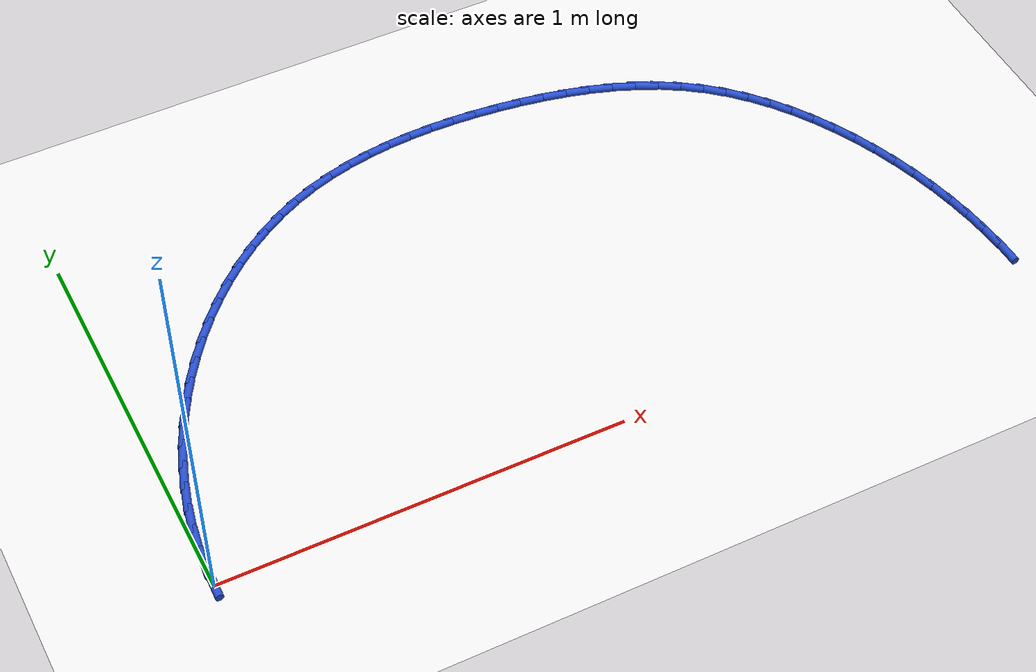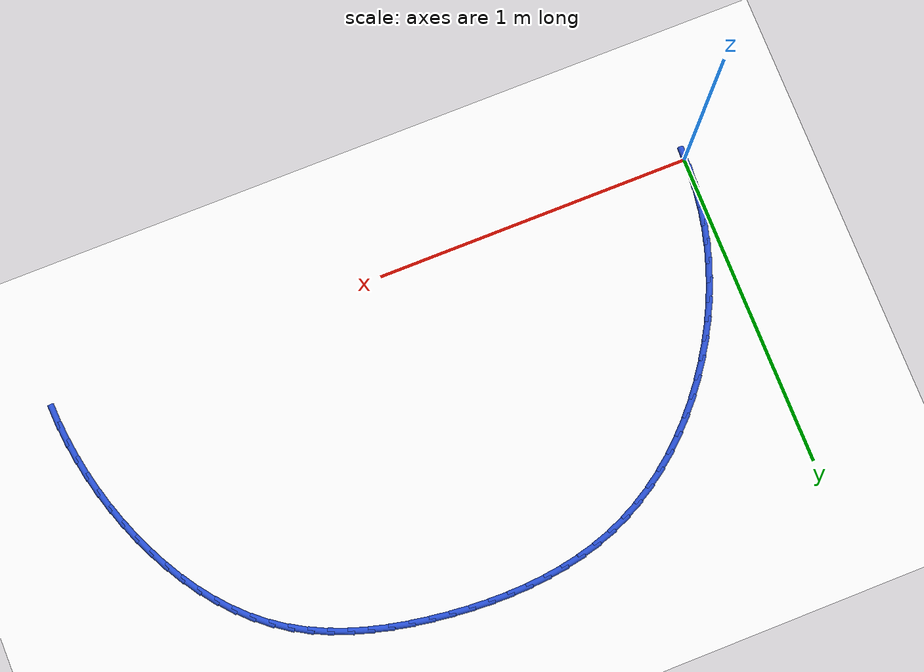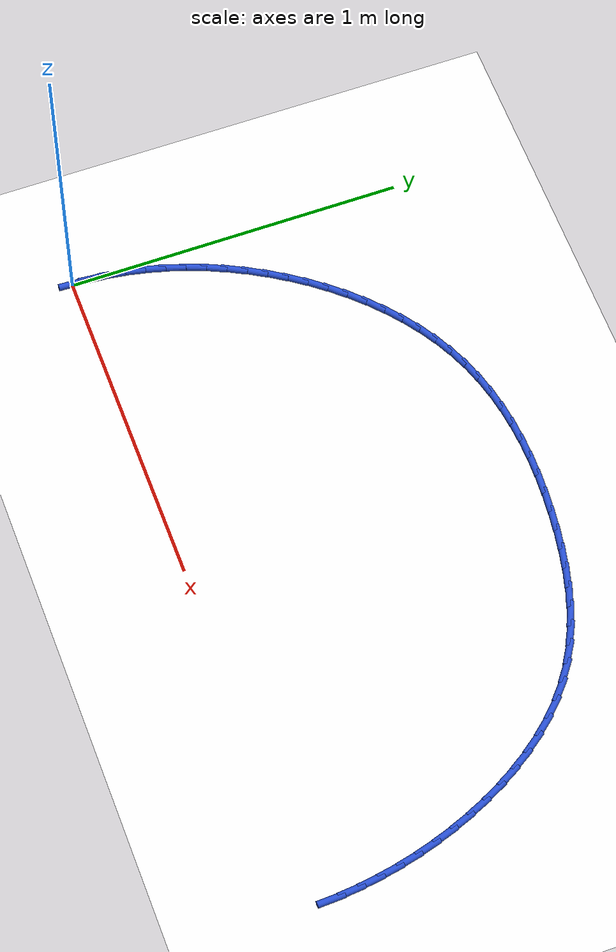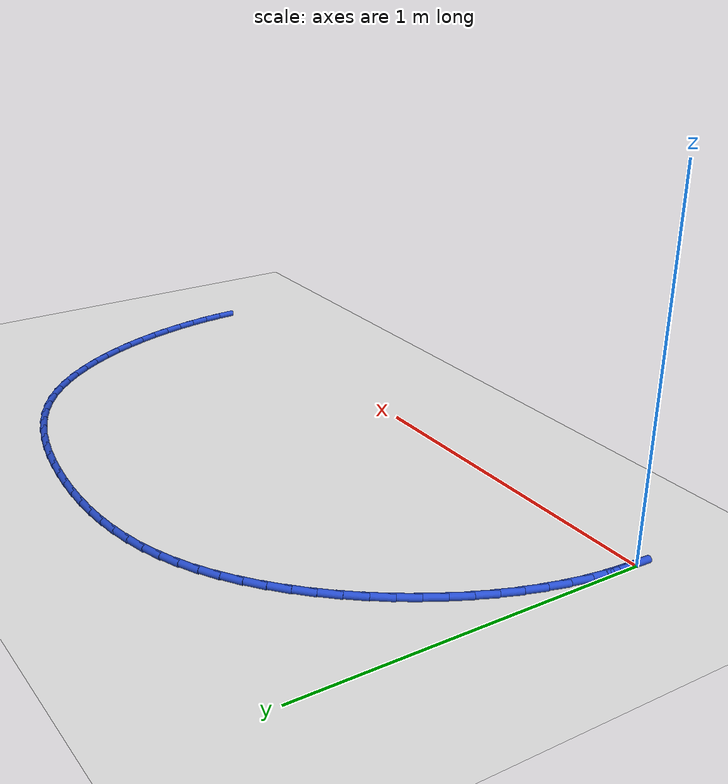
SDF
<sdf version="1.6">
 <world name="default">
  <model name="ground_plane">
   <static>1</static>
   <link name="link">
    <collision name="collision">
     <geometry><plane><normal>0 0 1</normal><size>100 100</size></plane></geometry>
     <surface><friction><ode><mu>100</mu><mu2>50</mu2></ode></friction></surface>
    </collision>
    <visual name="visual">
     <cast_shadows>0</cast_shadows>
     <geometry><plane><normal>0 0 1</normal><size>100 100</size></plane></geometry>
     <material>
      <script><uri>file://media/materials/scripts/gazebo.material</uri><name>Gazebo/WhiteGlow</name></script>
     </material>
    </visual>
   </link>
  </model>
  <model name="line">
   <link name="link_1">
    <pose>0.0022581431799000625 0.05949641283694692 0.01 0 1.57 1.4709597559428527</pose>
    <collision name="collision">
     <geometry><cylinder><radius>0.01</radius><length>0.08</length></cylinder></geometry>
    </collision>
    <visual name="visual">
     <material>
      <script><name>Gazebo/Blue</name><uri>file://media/materials/scripts/gazebo.material</uri></script>
     </material>
     <geometry><cylinder><radius>0.01</radius><length>0.08</length></cylinder></geometry>
    </visual>
   </link>
   <link name="link_2">
    <pose>0.008184350163069858 0.11865814413926674 0.01 0 1.57 1.4106777595014937</pose>
    <collision name="collision">
     <geometry><cylinder><radius>0.01</radius><length>0.08</length></cylinder></geometry>
    </collision>
    <visual name="visual">
     <material>
      <script><name>Gazebo/Blue</name><uri>file://media/materials/scripts/gazebo.material</uri></script>
     </material>
     <geometry><cylinder><radius>0.01</radius><length>0.08</length></cylinder></geometry>
    </visual>
   </link>
   <link name="link_3">
    <pose>0.017665695998516 0.17736576138999827 0.01 0 1.57 1.3520474319803333</pose>
    <collision name="collision">
     <geometry><cylinder><radius>0.01</radius><length>0.08</length></cylinder></geometry>
    </collision>
    <visual name="visual">
     <material>
      <script><name>Gazebo/Blue</name><uri>file://media/materials/scripts/gazebo.material</uri></script>
     </material>
     <geometry><cylinder><radius>0.01</radius><length>0.08</length></cylinder></geometry>
    </visual>
   </link>
   <link name="link_4">
    <pose>0.030589255735245235 0.2354998320721803 0.01 0 1.57 1.2950559337913763</pose>
    <collision name="collision">
     <geometry><cylinder><radius>0.01</radius><length>0.08</length></cylinder></geometry>
    </collision>
    <visual name="visual">
     <material>
      <script><name>Gazebo/Blue</name><uri>file://media/materials/scripts/gazebo.material</uri></script>
     </material>
     <geometry><cylinder><radius>0.01</radius><length>0.08</length></cylinder></geometry>
    </visual>
   </link>
   <link name="link_5">
    <pose>0.04684210442226431 0.29294092366885177 0.01 0 1.57 1.2396512311644703</pose>
    <collision name="collision">
     <geometry><cylinder><radius>0.01</radius><length>0.08</length></cylinder></geometry>
    </collision>
    <visual name="visual">
     <material>
      <script><name>Gazebo/Blue</name><uri>file://media/materials/scripts/gazebo.material</uri></script>
     </material>
     <geometry><cylinder><radius>0.01</radius><length>0.08</length></cylinder></geometry>
    </visual>
   </link>
   <link name="link_6">
    <pose>0.06631131710857985 0.3495696036630513 0.01 0 1.57 1.1857490258776877</pose>
    <collision name="collision">
     <geometry><cylinder><radius>0.01</radius><length>0.08</length></cylinder></geometry>
    </collision>
    <visual name="visual">
     <material>
      <script><name>Gazebo/Blue</name><uri>file://media/materials/scripts/gazebo.material</uri></script>
     </material>
     <geometry><cylinder><radius>0.01</radius><length>0.08</length></cylinder></geometry>
    </visual>
   </link>
   <link name="link_7">
    <pose>0.08888396884319866 0.40526643953781794 0.01 0 1.57 1.1332393164049697</pose>
    <collision name="collision">
     <geometry><cylinder><radius>0.01</radius><length>0.08</length></cylinder></geometry>
    </collision>
    <visual name="visual">
     <material>
      <script><name>Gazebo/Blue</name><uri>file://media/materials/scripts/gazebo.material</uri></script>
     </material>
     <geometry><cylinder><radius>0.01</radius><length>0.08</length></cylinder></geometry>
    </visual>
   </link>
   <link name="link_8">
    <pose>0.11444713467512746 0.45991199877619054 0.01 0 1.57 1.081992282602242</pose>
    <collision name="collision">
     <geometry><cylinder><radius>0.01</radius><length>0.08</length></cylinder></geometry>
    </collision>
    <visual name="visual">
     <material>
      <script><name>Gazebo/Blue</name><uri>file://media/materials/scripts/gazebo.material</uri></script>
     </material>
     <geometry><cylinder><radius>0.01</radius><length>0.08</length></cylinder></geometry>
    </visual>
   </link>
   <link name="link_9">
    <pose>0.1428878896533729 0.5133868488612076 0.01 0 1.57 1.031838331705927</pose>
    <collision name="collision">
     <geometry><cylinder><radius>0.01</radius><length>0.08</length></cylinder></geometry>
    </collision>
    <visual name="visual">
     <material>
      <script><name>Gazebo/Blue</name><uri>file://media/materials/scripts/gazebo.material</uri></script>
     </material>
     <geometry><cylinder><radius>0.01</radius><length>0.08</length></cylinder></geometry>
    </visual>
   </link>
   <link name="link_10">
    <pose>0.17409345116449543 0.5655688323245923 0.01 0 1.57 0.9819434877874824</pose>
    <collision name="collision">
     <geometry><cylinder><radius>0.01</radius><length>0.08</length></cylinder></geometry>
    </collision>
    <visual name="visual">
     <material>
      <script><name>Gazebo/Blue</name><uri>file://media/materials/scripts/gazebo.material</uri></script>
     </material>
     <geometry><cylinder><radius>0.01</radius><length>0.08</length></cylinder></geometry>
    </visual>
   </link>
   <link name="link_11">
    <pose>0.20795462254889133 0.6162671411601559 0.01 0 1.57 0.9312606729940588</pose>
    <collision name="collision">
     <geometry><cylinder><radius>0.01</radius><length>0.08</length></cylinder></geometry>
    </collision>
    <visual name="visual">
     <material>
      <script><name>Gazebo/Blue</name><uri>file://media/materials/scripts/gazebo.material</uri></script>
     </material>
     <geometry><cylinder><radius>0.01</radius><length>0.08</length></cylinder></geometry>
    </visual>
   </link>
   <link name="link_12">
    <pose>0.24436597562426 0.6652188225417216 0.01 0 1.57 0.8793268495297138</pose>
    <collision name="collision">
     <geometry><cylinder><radius>0.01</radius><length>0.08</length></cylinder></geometry>
    </collision>
    <visual name="visual">
     <material>
      <script><name>Gazebo/Blue</name><uri>file://media/materials/scripts/gazebo.material</uri></script>
     </material>
     <geometry><cylinder><radius>0.01</radius><length>0.08</length></cylinder></geometry>
    </visual>
   </link>
   <link name="link_13">
    <pose>0.2832222610787563 0.7121574992953588 0.01 0 1.57 0.8257154318035539</pose>
    <collision name="collision">
     <geometry><cylinder><radius>0.01</radius><length>0.08</length></cylinder></geometry>
    </collision>
    <visual name="visual">
     <material>
      <script><name>Gazebo/Blue</name><uri>file://media/materials/scripts/gazebo.material</uri></script>
     </material>
     <geometry><cylinder><radius>0.01</radius><length>0.08</length></cylinder></geometry>
    </visual>
   </link>
   <link name="link_14">
    <pose>0.32441822960053474 0.7568167942471355 0.01 0 1.57 0.7700053451466475</pose>
    <collision name="collision">
     <geometry><cylinder><radius>0.01</radius><length>0.08</length></cylinder></geometry>
    </collision>
    <visual name="visual">
     <material>
      <script><name>Gazebo/Blue</name><uri>file://media/materials/scripts/gazebo.material</uri></script>
     </material>
     <geometry><cylinder><radius>0.01</radius><length>0.08</length></cylinder></geometry>
    </visual>
   </link>
   <link name="link_15">
    <pose>0.3678486318777502 0.7989303302231215 0.01 0 1.57 0.7117850824075486</pose>
    <collision name="collision">
     <geometry><cylinder><radius>0.01</radius><length>0.08</length></cylinder></geometry>
    </collision>
    <visual name="visual">
     <material>
      <script><name>Gazebo/Blue</name><uri>file://media/materials/scripts/gazebo.material</uri></script>
     </material>
     <geometry><cylinder><radius>0.01</radius><length>0.08</length></cylinder></geometry>
    </visual>
   </link>
   <link name="link_16">
    <pose>0.4134082185985573 0.8382317300493853 0.01 0 1.57 0.6506613903814334</pose>
    <collision name="collision">
     <geometry><cylinder><radius>0.01</radius><length>0.08</length></cylinder></geometry>
    </collision>
    <visual name="visual">
     <material>
      <script><name>Gazebo/Blue</name><uri>file://media/materials/scripts/gazebo.material</uri></script>
     </material>
     <geometry><cylinder><radius>0.01</radius><length>0.08</length></cylinder></geometry>
    </visual>
   </link>
   <link name="link_17">
    <pose>0.4609917404511107 0.8744546165519959 0.01 0 1.57 0.586273758033735</pose>
    <collision name="collision">
     <geometry><cylinder><radius>0.01</radius><length>0.08</length></cylinder></geometry>
    </collision>
    <visual name="visual">
     <material>
      <script><name>Gazebo/Blue</name><uri>file://media/materials/scripts/gazebo.material</uri></script>
     </material>
     <geometry><cylinder><radius>0.01</radius><length>0.08</length></cylinder></geometry>
    </visual>
   </link>
   <link name="link_18">
    <pose>0.5104939481235652 0.9073326125570222 0.01 0 1.57 0.5183157596922987</pose>
    <collision name="collision">
     <geometry><cylinder><radius>0.01</radius><length>0.08</length></cylinder></geometry>
    </collision>
    <visual name="visual">
     <material>
      <script><name>Gazebo/Blue</name><uri>file://media/materials/scripts/gazebo.material</uri></script>
     </material>
     <geometry><cylinder><radius>0.01</radius><length>0.08</length></cylinder></geometry>
    </visual>
   </link>
   <link name="link_19">
    <pose>0.5618095923040753 0.9365993408905329 0.01 0 1.57 0.44656375696670053</pose>
    <collision name="collision">
     <geometry><cylinder><radius>0.01</radius><length>0.08</length></cylinder></geometry>
    </collision>
    <visual name="visual">
     <material>
      <script><name>Gazebo/Blue</name><uri>file://media/materials/scripts/gazebo.material</uri></script>
     </material>
     <geometry><cylinder><radius>0.01</radius><length>0.08</length></cylinder></geometry>
    </visual>
   </link>
   <link name="link_20">
    <pose>0.6148334236807963 0.9619884243785972 0.01 0 1.57 0.37180901015525364</pose>
    <collision name="collision">
     <geometry><cylinder><radius>0.01</radius><length>0.08</length></cylinder></geometry>
    </collision>
    <visual name="visual">
     <material>
      <script><name>Gazebo/Blue</name><uri>file://media/materials/scripts/gazebo.material</uri></script>
     </material>
     <geometry><cylinder><radius>0.01</radius><length>0.08</length></cylinder></geometry>
    </visual>
   </link>
   <link name="link_21">
    <pose>0.6694517256272086 0.9832866006740563 0.01 0 1.57 0.29960763305652044</pose>
    <collision name="collision">
     <geometry><cylinder><radius>0.01</radius><length>0.08</length></cylinder></geometry>
    </collision>
    <visual name="visual">
     <material>
      <script><name>Gazebo/Blue</name><uri>file://media/materials/scripts/gazebo.material</uri></script>
     </material>
     <geometry><cylinder><radius>0.01</radius><length>0.08</length></cylinder></geometry>
    </visual>
   </link>
   <link name="link_22">
    <pose>0.7254998306399204 1.0006002184402787 0.01 0 1.57 0.23230389389681902</pose>
    <collision name="collision">
     <geometry><cylinder><radius>0.01</radius><length>0.08</length></cylinder></geometry>
    </collision>
    <visual name="visual">
     <material>
      <script><name>Gazebo/Blue</name><uri>file://media/materials/scripts/gazebo.material</uri></script>
     </material>
     <geometry><cylinder><radius>0.01</radius><length>0.08</length></cylinder></geometry>
    </visual>
   </link>
   <link name="link_23">
    <pose>0.7827941043126153 1.014154604293153 0.01 0 1.57 0.1700556328530676</pose>
    <collision name="collision">
     <geometry><cylinder><radius>0.01</radius><length>0.08</length></cylinder></geometry>
    </collision>
    <visual name="visual">
     <material>
      <script><name>Gazebo/Blue</name><uri>file://media/materials/scripts/gazebo.material</uri></script>
     </material>
     <geometry><cylinder><radius>0.01</radius><length>0.08</length></cylinder></geometry>
    </visual>
   </link>
   <link name="link_24">
    <pose>0.8411508802905494 1.024175285258653 0.01 0 1.57 0.11283736599832257</pose>
    <collision name="collision">
     <geometry><cylinder><radius>0.01</radius><length>0.08</length></cylinder></geometry>
    </collision>
    <visual name="visual">
     <material>
      <script><name>Gazebo/Blue</name><uri>file://media/materials/scripts/gazebo.material</uri></script>
     </material>
     <geometry><cylinder><radius>0.01</radius><length>0.08</length></cylinder></geometry>
    </visual>
   </link>
   <link name="link_25">
    <pose>0.900386492218978 1.0308877883627505 0.01 0 1.57 0.06049351140634902</pose>
    <collision name="collision">
     <geometry><cylinder><radius>0.01</radius><length>0.08</length></cylinder></geometry>
    </collision>
    <visual name="visual">
     <material>
      <script><name>Gazebo/Blue</name><uri>file://media/materials/scripts/gazebo.material</uri></script>
     </material>
     <geometry><cylinder><radius>0.01</radius><length>0.08</length></cylinder></geometry>
    </visual>
   </link>
   <link name="link_26">
    <pose>0.9603172737431569 1.03451764063142 0.01 0 1.57 0.012783870873970999</pose>
    <collision name="collision">
     <geometry><cylinder><radius>0.01</radius><length>0.08</length></cylinder></geometry>
    </collision>
    <visual name="visual">
     <material>
      <script><name>Gazebo/Blue</name><uri>file://media/materials/scripts/gazebo.material</uri></script>
     </material>
     <geometry><cylinder><radius>0.01</radius><length>0.08</length></cylinder></geometry>
    </visual>
   </link>
   <link name="link_27">
    <pose>1.020759558508342 1.0352903690906339 0.01 0 1.57 -0.03057898921608889</pose>
    <collision name="collision">
     <geometry><cylinder><radius>0.01</radius><length>0.08</length></cylinder></geometry>
    </collision>
    <visual name="visual">
     <material>
      <script><name>Gazebo/Blue</name><uri>file://media/materials/scripts/gazebo.material</uri></script>
     </material>
     <geometry><cylinder><radius>0.01</radius><length>0.08</length></cylinder></geometry>
    </visual>
   </link>
   <link name="link_28">
    <pose>1.0815296801597887 1.0334315007663655 0.01 0 1.57 -0.06990131915630989</pose>
    <collision name="collision">
     <geometry><cylinder><radius>0.01</radius><length>0.08</length></cylinder></geometry>
    </collision>
    <visual name="visual">
     <material>
      <script><name>Gazebo/Blue</name><uri>file://media/materials/scripts/gazebo.material</uri></script>
     </material>
     <geometry><cylinder><radius>0.01</radius><length>0.08</length></cylinder></geometry>
    </visual>
   </link>
   <link name="link_29">
    <pose>1.1424439723427529 1.0291665626845878 0.01 0 1.57 -0.10549644360412401</pose>
    <collision name="collision">
     <geometry><cylinder><radius>0.01</radius><length>0.08</length></cylinder></geometry>
    </collision>
    <visual name="visual">
     <material>
      <script><name>Gazebo/Blue</name><uri>file://media/materials/scripts/gazebo.material</uri></script>
     </material>
     <geometry><cylinder><radius>0.01</radius><length>0.08</length></cylinder></geometry>
    </visual>
   </link>
   <link name="link_30">
    <pose>1.203318626898756 1.022720571810435 0.01 0 1.57 -0.13993058637668243</pose>
    <collision name="collision">
     <geometry><cylinder><radius>0.01</radius><length>0.08</length></cylinder></geometry>
    </collision>
    <visual name="visual">
     <material>
      <script><name>Gazebo/Blue</name><uri>file://media/materials/scripts/gazebo.material</uri></script>
     </material>
     <geometry><cylinder><radius>0.01</radius><length>0.08</length></cylinder></geometry>
    </visual>
   </link>
   <link name="link_31">
    <pose>1.2639321763580131 1.0141830864769628 0.01 0 1.57 -0.17887683756756642</pose>
    <collision name="collision">
     <geometry><cylinder><radius>0.01</radius><length>0.08</length></cylinder></geometry>
    </collision>
    <visual name="visual">
     <material>
      <script><name>Gazebo/Blue</name><uri>file://media/materials/scripts/gazebo.material</uri></script>
     </material>
     <geometry><cylinder><radius>0.01</radius><length>0.08</length></cylinder></geometry>
    </visual>
   </link>
   <link name="link_32">
    <pose>1.3239750520386753 1.0033267694273376 0.01 0 1.57 -0.2235495799318088</pose>
    <collision name="collision">
     <geometry><cylinder><radius>0.01</radius><length>0.08</length></cylinder></geometry>
    </collision>
    <visual name="visual">
     <material>
      <script><name>Gazebo/Blue</name><uri>file://media/materials/scripts/gazebo.material</uri></script>
     </material>
     <geometry><cylinder><radius>0.01</radius><length>0.08</length></cylinder></geometry>
    </visual>
   </link>
   <link name="link_33">
    <pose>1.3831251057781964 0.9898790356508923 0.01 0 1.57 -0.2744472410891071</pose>
    <collision name="collision">
     <geometry><cylinder><radius>0.01</radius><length>0.08</length></cylinder></geometry>
    </collision>
    <visual name="visual">
     <material>
      <script><name>Gazebo/Blue</name><uri>file://media/materials/scripts/gazebo.material</uri></script>
     </material>
     <geometry><cylinder><radius>0.01</radius><length>0.08</length></cylinder></geometry>
    </visual>
   </link>
   <link name="link_34">
    <pose>1.4410601894140285 0.9735673001369579 0.01 0 1.57 -0.3320713208858339</pose>
    <collision name="collision">
     <geometry><cylinder><radius>0.01</radius><length>0.08</length></cylinder></geometry>
    </collision>
    <visual name="visual">
     <material>
      <script><name>Gazebo/Blue</name><uri>file://media/materials/scripts/gazebo.material</uri></script>
     </material>
     <geometry><cylinder><radius>0.01</radius><length>0.08</length></cylinder></geometry>
    </visual>
   </link>
   <link name="link_35">
    <pose>1.4974581547836257 0.954118977874867 0.01 0 1.57 -0.3968677732215719</pose>
    <collision name="collision">
     <geometry><cylinder><radius>0.01</radius><length>0.08</length></cylinder></geometry>
    </collision>
    <visual name="visual">
     <material>
      <script><name>Gazebo/Blue</name><uri>file://media/materials/scripts/gazebo.material</uri></script>
     </material>
     <geometry><cylinder><radius>0.01</radius><length>0.08</length></cylinder></geometry>
    </visual>
   </link>
   <link name="link_36">
    <pose>1.5519968537244406 0.9312614838539504 0.01 0 1.57 -0.4691423822246774</pose>
    <collision name="collision">
     <geometry><cylinder><radius>0.01</radius><length>0.08</length></cylinder></geometry>
    </collision>
    <visual name="visual">
     <material>
      <script><name>Gazebo/Blue</name><uri>file://media/materials/scripts/gazebo.material</uri></script>
     </material>
     <geometry><cylinder><radius>0.01</radius><length>0.08</length></cylinder></geometry>
    </visual>
   </link>
   <link name="link_37">
    <pose>1.6043541380739266 0.9047222330635404 0.01 0 1.57 -0.5489498973329867</pose>
    <collision name="collision">
     <geometry><cylinder><radius>0.01</radius><length>0.08</length></cylinder></geometry>
    </collision>
    <visual name="visual">
     <material>
      <script><name>Gazebo/Blue</name><uri>file://media/materials/scripts/gazebo.material</uri></script>
     </material>
     <geometry><cylinder><radius>0.01</radius><length>0.08</length></cylinder></geometry>
    </visual>
   </link>
   <link name="link_38">
    <pose>1.6542078596695373 0.8742286404929692 0.01 0 1.57 -0.6355381226005894</pose>
    <collision name="collision">
     <geometry><cylinder><radius>0.01</radius><length>0.08</length></cylinder></geometry>
    </collision>
    <visual name="visual">
     <material>
      <script><name>Gazebo/Blue</name><uri>file://media/materials/scripts/gazebo.material</uri></script>
     </material>
     <geometry><cylinder><radius>0.01</radius><length>0.08</length></cylinder></geometry>
    </visual>
   </link>
   <link name="link_39">
    <pose>1.7012472285916376 0.839530923027848 0.01 0 1.57 -0.7214989191807236</pose>
    <collision name="collision">
     <geometry><cylinder><radius>0.01</radius><length>0.08</length></cylinder></geometry>
    </collision>
    <visual name="visual">
     <material>
      <script><name>Gazebo/Blue</name><uri>file://media/materials/scripts/gazebo.material</uri></script>
     </material>
     <geometry><cylinder><radius>0.01</radius><length>0.08</length></cylinder></geometry>
    </visual>
   </link>
   <link name="link_40">
    <pose>1.745341299514805 0.8007403391176398 0.01 0 1.57 -0.801204429314</pose>
    <collision name="collision">
     <geometry><cylinder><radius>0.01</radius><length>0.08</length></cylinder></geometry>
    </collision>
    <visual name="visual">
     <material>
      <script><name>Gazebo/Blue</name><uri>file://media/materials/scripts/gazebo.material</uri></script>
     </material>
     <geometry><cylinder><radius>0.01</radius><length>0.08</length></cylinder></geometry>
    </visual>
   </link>
   <link name="link_41">
    <pose>1.7865028119786677 0.7582565974074211 0.01 0 1.57 -0.8747087828641876</pose>
    <collision name="collision">
     <geometry><cylinder><radius>0.01</radius><length>0.08</length></cylinder></geometry>
    </collision>
    <visual name="visual">
     <material>
      <script><name>Gazebo/Blue</name><uri>file://media/materials/scripts/gazebo.material</uri></script>
     </material>
     <geometry><cylinder><radius>0.01</radius><length>0.08</length></cylinder></geometry>
    </visual>
   </link>
   <link name="link_42">
    <pose>1.8247485173979436 0.7124874604604972 0.01 0 1.57 -0.942441432604227</pose>
    <collision name="collision">
     <geometry><cylinder><radius>0.01</radius><length>0.08</length></cylinder></geometry>
    </collision>
    <visual name="visual">
     <material>
      <script><name>Gazebo/Blue</name><uri>file://media/materials/scripts/gazebo.material</uri></script>
     </material>
     <geometry><cylinder><radius>0.01</radius><length>0.08</length></cylinder></geometry>
    </visual>
   </link>
   <link name="link_43">
    <pose>1.8600951671873494 0.6638406908401736 0.01 0 1.57 -1.0049646983480653</pose>
    <collision name="collision">
     <geometry><cylinder><radius>0.01</radius><length>0.08</length></cylinder></geometry>
    </collision>
    <visual name="visual">
     <material>
      <script><name>Gazebo/Blue</name><uri>file://media/materials/scripts/gazebo.material</uri></script>
     </material>
     <geometry><cylinder><radius>0.01</radius><length>0.08</length></cylinder></geometry>
    </visual>
   </link>
   <link name="link_44">
    <pose>1.892559512761602 0.6127240511097563 0.01 0 1.57 -1.0629072122064767</pose>
    <collision name="collision">
     <geometry><cylinder><radius>0.01</radius><length>0.08</length></cylinder></geometry>
    </collision>
    <visual name="visual">
     <material>
      <script><name>Gazebo/Blue</name><uri>file://media/materials/scripts/gazebo.material</uri></script>
     </material>
     <geometry><cylinder><radius>0.01</radius><length>0.08</length></cylinder></geometry>
    </visual>
   </link>
   <link name="link_45">
    <pose>1.9221583055354188 0.5595453038325505 0.01 0 1.57 -1.1169207777499972</pose>
    <collision name="collision">
     <geometry><cylinder><radius>0.01</radius><length>0.08</length></cylinder></geometry>
    </collision>
    <visual name="visual">
     <material>
      <script><name>Gazebo/Blue</name><uri>file://media/materials/scripts/gazebo.material</uri></script>
     </material>
     <geometry><cylinder><radius>0.01</radius><length>0.08</length></cylinder></geometry>
    </visual>
   </link>
   <link name="link_46">
    <pose>1.9489082969235176 0.5047122115718625 0.01 0 1.57 -1.1676564531985036</pose>
    <collision name="collision">
     <geometry><cylinder><radius>0.01</radius><length>0.08</length></cylinder></geometry>
    </collision>
    <visual name="visual">
     <material>
      <script><name>Gazebo/Blue</name><uri>file://media/materials/scripts/gazebo.material</uri></script>
     </material>
     <geometry><cylinder><radius>0.01</radius><length>0.08</length></cylinder></geometry>
    </visual>
   </link>
   <link name="link_47">
    <pose>1.9728262383406139 0.44863253689099725 0.01 0 1.57 -1.2157551654621028</pose>
    <collision name="collision">
     <geometry><cylinder><radius>0.01</radius><length>0.08</length></cylinder></geometry>
    </collision>
    <visual name="visual">
     <material>
      <script><name>Gazebo/Blue</name><uri>file://media/materials/scripts/gazebo.material</uri></script>
     </material>
     <geometry><cylinder><radius>0.01</radius><length>0.08</length></cylinder></geometry>
    </visual>
   </link>
   <link name="link_48">
    <pose>1.9939288812014255 0.3917140423532605 0.01 0 1.57 -1.2621093909491585</pose>
    <collision name="collision">
     <geometry><cylinder><radius>0.01</radius><length>0.08</length></cylinder></geometry>
    </collision>
    <visual name="visual">
     <material>
      <script><name>Gazebo/Blue</name><uri>file://media/materials/scripts/gazebo.material</uri></script>
     </material>
     <geometry><cylinder><radius>0.01</radius><length>0.08</length></cylinder></geometry>
    </visual>
   </link>
   <link name="link_49">
    <pose>2.012236328868652 0.33430238422315695 0.01 0 1.57 -1.308101571015371</pose>
    <collision name="collision">
     <geometry><cylinder><radius>0.01</radius><length>0.08</length></cylinder></geometry>
    </collision>
    <visual name="visual">
     <material>
      <script><name>Gazebo/Blue</name><uri>file://media/materials/scripts/gazebo.material</uri></script>
     </material>
     <geometry><cylinder><radius>0.01</radius><length>0.08</length></cylinder></geometry>
    </visual>
   </link>
   <link name="link_50">
    <pose>2.0277822878208265 0.27649117452664096 0.01 0 1.57 -1.3538888222404006</pose>
    <collision name="collision">
     <geometry><cylinder><radius>0.01</radius><length>0.08</length></cylinder></geometry>
    </collision>
    <visual name="visual">
     <material>
      <script><name>Gazebo/Blue</name><uri>file://media/materials/scripts/gazebo.material</uri></script>
     </material>
     <geometry><cylinder><radius>0.01</radius><length>0.08</length></cylinder></geometry>
    </visual>
   </link>
   <link name="link_51">
    <pose>2.0406039148556845 0.21831009632765164 0.01 0 1.57 -1.3993214452762466</pose>
    <collision name="collision">
     <geometry><cylinder><radius>0.01</radius><length>0.08</length></cylinder></geometry>
    </collision>
    <visual name="visual">
     <material>
      <script><name>Gazebo/Blue</name><uri>file://media/materials/scripts/gazebo.material</uri></script>
     </material>
     <geometry><cylinder><radius>0.01</radius><length>0.08</length></cylinder></geometry>
    </visual>
   </link>
   <link name="link_52">
    <pose>2.0507383667713412 0.15978883268306748 0.01 0 1.57 -1.4442584899742725</pose>
    <collision name="collision">
     <geometry><cylinder><radius>0.01</radius><length>0.08</length></cylinder></geometry>
    </collision>
    <visual name="visual">
     <material>
      <script><name>Gazebo/Blue</name><uri>file://media/materials/scripts/gazebo.material</uri></script>
     </material>
     <geometry><cylinder><radius>0.01</radius><length>0.08</length></cylinder></geometry>
    </visual>
   </link>
   <link name="link_53">
    <pose>2.058222800365913 0.10095706664976739 0.01 0 1.57 -1.488570384238676</pose>
    <collision name="collision">
     <geometry><cylinder><radius>0.01</radius><length>0.08</length></cylinder></geometry>
    </collision>
    <visual name="visual">
     <material>
      <script><name>Gazebo/Blue</name><uri>file://media/materials/scripts/gazebo.material</uri></script>
     </material>
     <geometry><cylinder><radius>0.01</radius><length>0.08</length></cylinder></geometry>
    </visual>
   </link>
   <link name="link_54">
    <pose>2.0630943724375146 0.041844481284629836 0.01 0 1.57 -1.532141005859347</pose>
    <collision name="collision">
     <geometry><cylinder><radius>0.01</radius><length>0.08</length></cylinder></geometry>
    </collision>
    <visual name="visual">
     <material>
      <script><name>Gazebo/Blue</name><uri>file://media/materials/scripts/gazebo.material</uri></script>
     </material>
     <geometry><cylinder><radius>0.01</radius><length>0.08</length></cylinder></geometry>
    </visual>
   </link>
   <link name="link_110">
    <pose>-8.673617379884035e-17 -1.3877787807814457e-17 0.01 0 1.57 1.5323570819630417</pose>
    <collision name="collision">
     <geometry><cylinder><radius>0.01</radius><length>0.08</length></cylinder></geometry>
    </collision>
    <visual name="visual">
     <material>
      <script><name>Gazebo/Blue</name><uri>file://media/materials/scripts/gazebo.material</uri></script>
     </material>
     <geometry><cylinder><radius>0.01</radius><length>0.08</length></cylinder></geometry>
    </visual>
   </link>
   <link name="link_111">
    <pose>0.0022872546138294723 0.05947380034005298 0.01 0 1.57 1.5323570819630419</pose>
    <collision name="collision">
     <geometry><cylinder><radius>0.01</radius><length>0.08</length></cylinder></geometry>
    </collision>
    <visual name="visual">
     <material>
      <script><name>Gazebo/Blue</name><uri>file://media/materials/scripts/gazebo.material</uri></script>
     </material>
     <geometry><cylinder><radius>0.01</radius><length>0.08</length></cylinder></geometry>
    </visual>
   </link>
  </model>
 </world>
</sdf>
